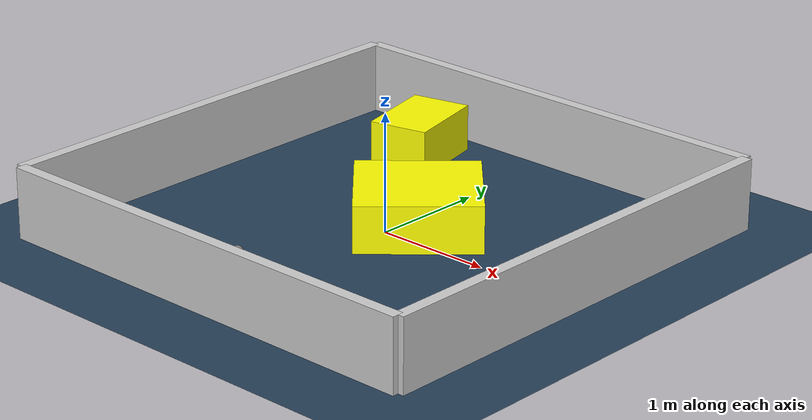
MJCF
<?xml version="1.0" ?>
<mujoco model="generated_environment">
  <option timestep="0.01" integrator="RK4" cone="elliptic"/>
  <default>
    <geom density="1"/>
  </default>
  <asset>
    <texture builtin="gradient" height="3072" rgb1="0.3 0.5 0.7" rgb2="0 0 0" type="skybox" width="512"/>
    <texture builtin="checker" height="300" mark="edge" markrgb="0.8 0.8 0.8" name="groundplane" rgb1="0.2 0.3 0.4" rgb2="0.1 0.2 0.3" type="2d" width="300"/>
    <material name="groundplane" reflectance="0.2" texrepeat="5 5" texture="groundplane" texuniform="true"/>
    <material name="robot" rgba="0.0 1.0 0.0 1"/>
  </asset>
  <worldbody>
    <light dir="0 0 -1" directional="true" pos="0 0 1.5"/>
    <geom condim="4" friction="1.0 0.005 0.001" material="groundplane" name="floor" size="0 0 0.05" type="plane"/>
    <body name="walls">
      <geom name="wall_1" condim="4" pos="-2.0 0.0 0.3" rgba="0.800000011920929 0.800000011920929 0.800000011920929 1.0" size="0.05 2.0 0.3" type="box"/>
      <geom name="wall_2" condim="4" pos="2.0 0.0 0.3" rgba="0.800000011920929 0.800000011920929 0.800000011920929 1.0" size="0.05 2.0 0.3" type="box"/>
      <geom name="wall_3" condim="4" pos="0.0 -2.0 0.3" rgba="0.800000011920929 0.800000011920929 0.800000011920929 1.0" size="2.0 0.05 0.3" type="box"/>
      <geom name="wall_4" condim="4" pos="0.0 2.0 0.3" rgba="0.800000011920929 0.800000011920929 0.800000011920929 1.0" size="2.0 0.05 0.3" type="box"/>
    </body>
    <body name="robot">
      <joint name="joint_x" type="slide" pos="0 0 0" axis="1 0 0"/>
      <joint name="joint_y" type="slide" pos="0 0 0" axis="0 1 0"/>
      <geom name="robot" type="sphere" pos="-0.2398130794141926 -1.3762854279575647 0.2" size="0.05" mass="5." friction="1.0 0.005 0.0001" condim="4"/>
      <site name="sensor_ball"/>
    </body>
    <body name="obstacle_1_movable">
      <geom name="obstacle_1_movable" condim="4" pos="0.15352674283887136 0.21264669869698904 0.2" euler="0 0 132.94131970408318" friction="1.0 0.005 0.001" rgba="1 1 0 1" size="0.48174424633151497 0.5106105594838091 0.2" type="box" mass="0.1"/>
      <joint type="free"/>
    </body>
    <body name="obstacle_2_movable">
      <geom name="obstacle_2_movable" condim="4" pos="-0.8882964936656441 1.367559000514809 0.2" euler="0 0 12.992372124328174" friction="1.0 0.005 0.001" rgba="1 1 0 1" size="0.25683127472944267 0.3714056955549543 0.2" type="box" mass="0.1"/>
      <joint type="free"/>
    </body>
  </worldbody>
  <actuator>
    <motor name="actuator_x" joint="joint_x" gear="1" ctrlrange="-1 1"/>
    <motor name="actuator_y" joint="joint_y" gear="1" ctrlrange="-1 1"/>
  </actuator>
</mujoco>
